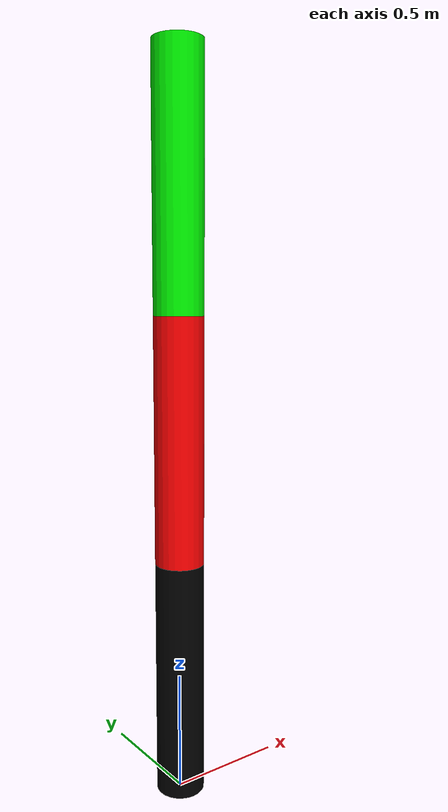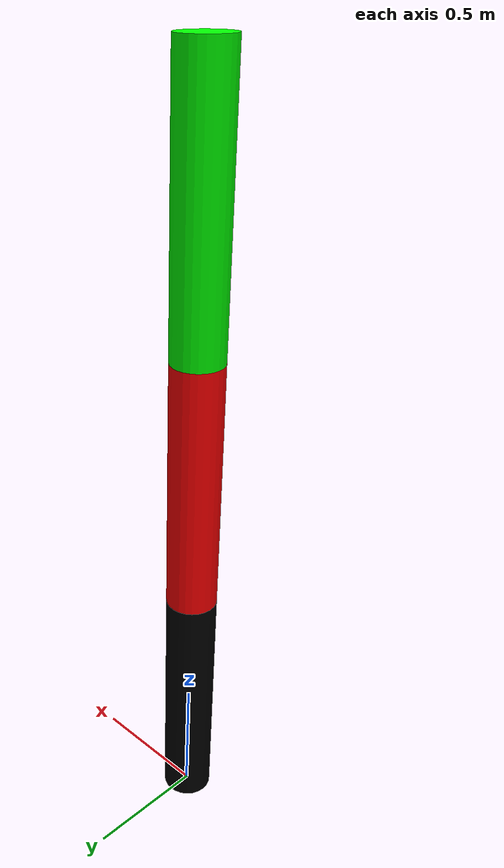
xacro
<?xml version="1.0"?>
<robot xmlns:xacro="http://www.ros.org/wiki/xacro" name="my_robot_arm">
    <xacro:arg name="suffix" default="v1"/>
    <xacro:property name="suffix" value="$(arg suffix)"/>
    <xacro:property name="link1_length" value="1"/>
    <xacro:property name="link2_length" value="1"/>
    <xacro:property name="link3_length" value="1" />

    <xacro:property name="link1_radius" value="0.1" />
    <xacro:property name="link2_radius" value="0.1" />
    <xacro:property name="link3_radius" value="0.1" />

    <xacro:property name="link1_mass" value="1.0"/>
    <xacro:property name="link2_mass" value="0.5"/>
    <xacro:property name="link3_mass" value="0.2"/>

    <material name="black"><color rgba="0 0 0 1"/></material>
    <material name="red"><color rgba="1 0 0 1"/></material>
    <material name="green"><color rgba="0 1 0 1"/></material>

    <xacro:macro name="cylinder_inertia" params="m r h">
        <inertia ixx="${(m/12) * (3*r*r + h*h)}" ixy="0" ixz="0"
                 iyy="${(m/12) * (3*r*r + h*h)}" iyz="0"
                 izz="${(m/2) * (r*r)}" />
    </xacro:macro>

    <xacro:macro name="Arm3Joints" params="parent suffix *origin">

        <!-- === JOINT 1=== -->
        <joint name="joint1_${suffix}" type="revolute">
            <xacro:insert_block name="origin" />
            <parent link="${parent}"/>
            <child link="link1_${suffix}"/>
            <axis xyz="0 0 1"/>
            <limit lower="-3.14" upper="3.14" effort="3000.0" velocity="2.0"/>
            <dynamics damping="0.5" friction="0.00"/>
        </joint>

        <!-- === LINK 1 === -->
        <link name="link1_${suffix}">
            <visual>
                <origin xyz="0 0 ${link1_length/2}" rpy="0 0 0"/>
                <geometry>
                    <cylinder length="${link1_length}" radius="${link1_radius}"/>
                </geometry>
                <material name="black"/>
            </visual>
            <collision>
                <origin xyz="0 0 ${link1_length/2}" rpy="0 0 0"/>
                <geometry>
                    <cylinder length="${link1_length}" radius="${link1_radius}"/>
                </geometry>
            </collision>
            <inertial>
                <origin xyz="0 0 ${link1_length/2}" rpy="0 0 0"/>
                <mass value="${link1_mass}"/>
                <xacro:cylinder_inertia m="${link1_mass}" r="${link1_radius}" h="${link1_length}"/>
            </inertial>
        </link>

        <!-- === JOINT 2 === -->
        <joint name="joint2_${suffix}" type="revolute">
            <origin xyz="0 0 ${link1_length}" rpy="0 0 0" />
            <parent link="link1_${suffix}"/>
            <child link="link2_${suffix}"/>
            <axis xyz="0 1 0"/>
            <limit lower="-3.0" upper="3.0" effort="3000.0" velocity="2.0"/>
            <dynamics damping="0.5" friction="0.00"/>
        </joint>

        <!-- === LINK 2 === -->
        <link name="link2_${suffix}">
            <visual>
                <origin xyz="0 0 ${link2_length/2}" rpy="0 0 0"/>
                <geometry>
                    <cylinder length="${link2_length}" radius="${link2_radius}"/>
                </geometry>
                <material name="red"/>
            </visual>
            <collision>
                <origin xyz="0 0 ${link2_length/2}" rpy="0 0 0"/>
                <geometry>
                    <cylinder length="${link2_length}" radius="${link2_radius}"/>
                </geometry>
            </collision>
            <inertial>
                <origin xyz="0 0 ${link2_length/2}" rpy="0 0 0"/>
                <mass value="${link2_mass}"/>
                <xacro:cylinder_inertia m="${link2_mass}" r="${link2_radius}" h="${link2_length}"/>
            </inertial>
        </link>

        <!-- === JOINT 3 === -->
        <joint name="joint3_${suffix}" type="revolute">
            <origin xyz="0 0 ${link2_length}" rpy="0 0 0" />
            <parent link="link2_${suffix}"/>
            <child link="link3_${suffix}"/>
            <axis xyz="1 0 0"/>
            <limit lower="-3.0" upper="3.0" effort="3000.0" velocity="2.0"/>
            <dynamics damping="0.5" friction="0.00"/>
        </joint>

        <!-- === LINK 3 === -->
        <link name="link3_${suffix}">
            <visual>
                <origin xyz="0 0 ${link3_length/2}" rpy="0 0 0"/>
                <geometry>
                    <cylinder length="${link3_length}" radius="${link3_radius}"/>
                </geometry>
                <material name="green"/>
            </visual>
            <collision>
                <origin xyz="0 0 ${link3_length/2}" rpy="0 0 0"/>
                <geometry>
                    <cylinder length="${link3_length}" radius="${link3_radius}"/>
                </geometry>
            </collision>
            <inertial>
                <origin xyz="0 0 ${link3_length/2}" rpy="0 0 0"/>
                <mass value="${link3_mass}"/>
                <xacro:cylinder_inertia m="${link3_mass}" r="${link3_radius}" h="${link3_length}"/>
            </inertial>
        </link>

    </xacro:macro>

    <link name="world"/>

    <xacro:Arm3Joints parent="world" suffix="v1">
        <origin xyz="0 0 0" rpy="0 0 0" />
    </xacro:Arm3Joints>

    <ros2_control name="GazeboSystem" type="system">

        <hardware>
            <plugin>gz_ros2_control/GazeboSimSystem</plugin>
        </hardware>

        <joint name="joint1_${suffix}">
            <command_interface name="effort"/>
            <state_interface name="velocity"/>
            <state_interface name="position"/>
        </joint>

        <joint name="joint2_${suffix}">
            <command_interface name="effort"/>
            <state_interface name="velocity"/>
            <state_interface name="position"/>
        </joint>

        <joint name="joint3_${suffix}">
            <command_interface name="effort"/>
            <state_interface name="velocity"/>
            <state_interface name="position"/>
        </joint>
    </ros2_control>

    <gazebo>
        <plugin filename="libgz_ros2_control-system.so" name="gz_ros2_control::GazeboSimROS2ControlPlugin">
            <parameters>$(find robot_arm_pkg)/config/controllers.yaml</parameters>
        </plugin>
    </gazebo>
</robot>
